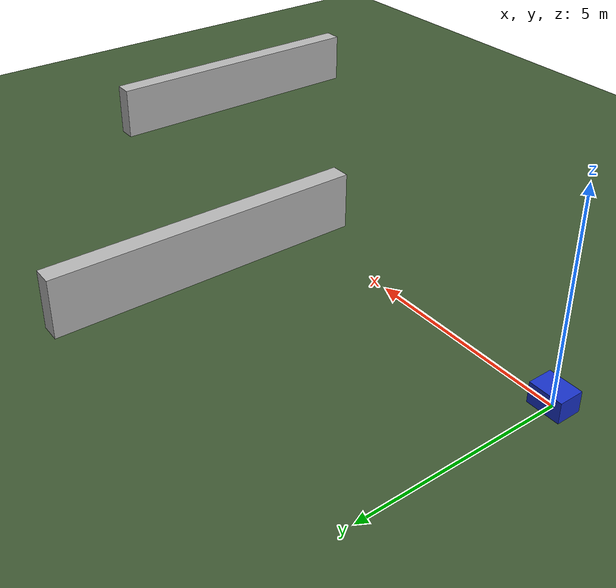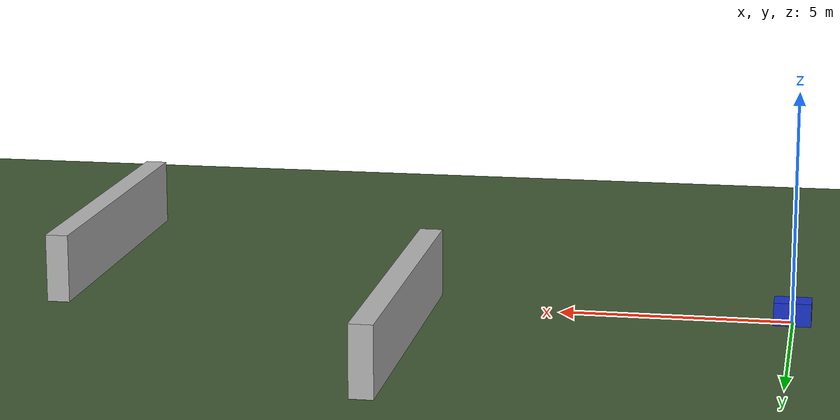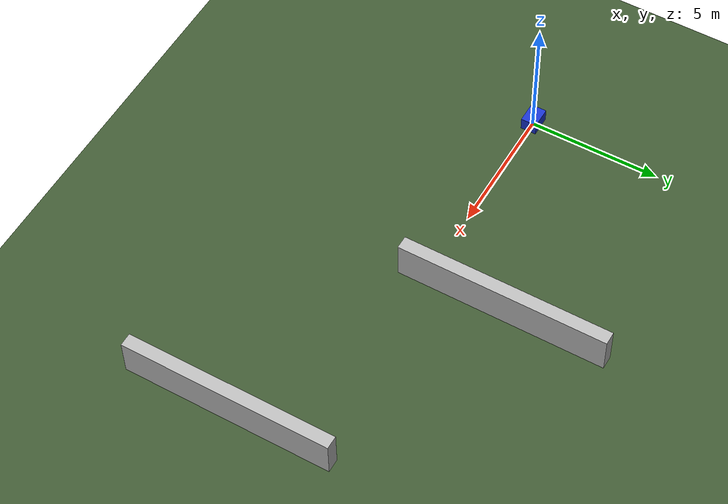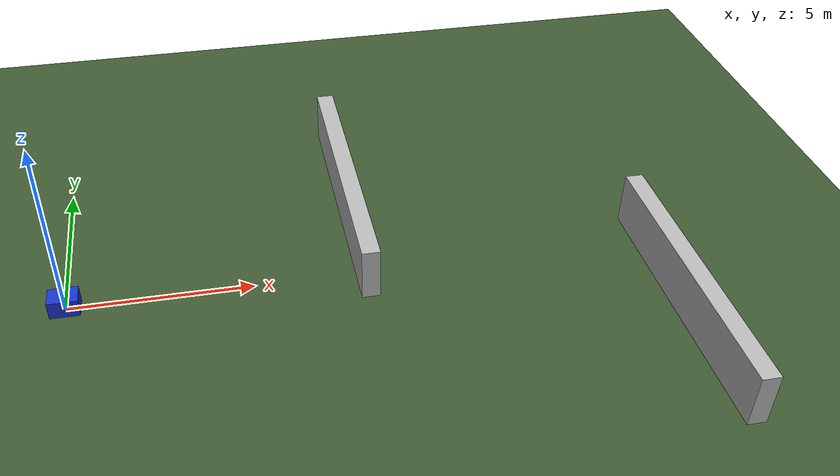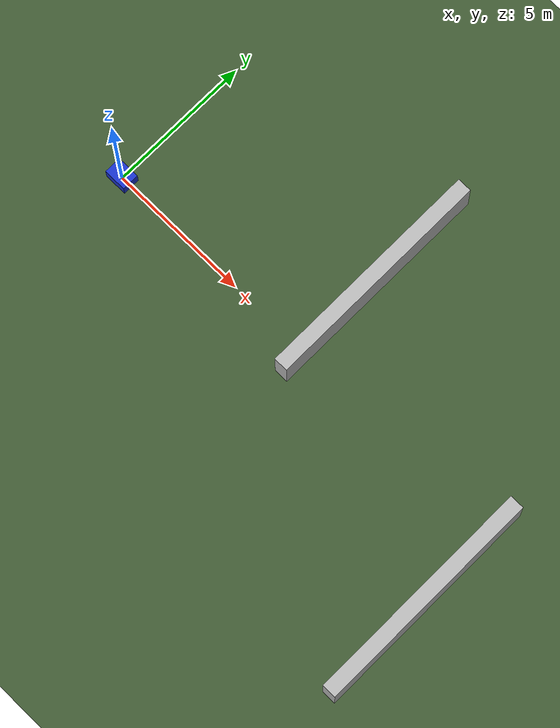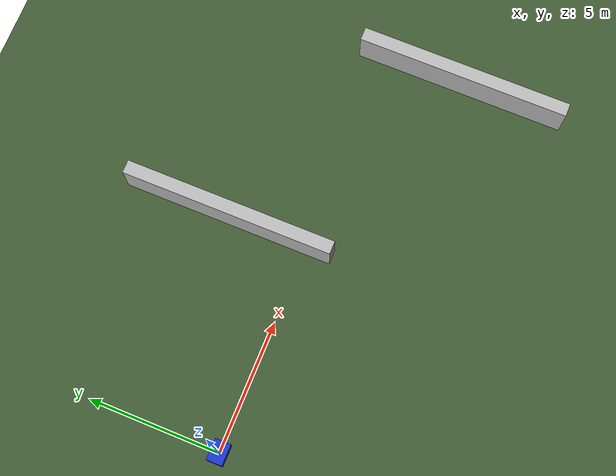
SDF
<?xml version="1.0"?>
<sdf version="1.9">
  <world name="outdoor_test">
    <gravity>0 0 -9.81</gravity>
    <scene>
      <ambient>0.7 0.7 0.7 1</ambient>
      <background>0.5 0.7 0.9 1</background>
    </scene>
    <spherical_coordinates>
      <surface_model>EARTH_WGS84</surface_model>
      <world_frame_orientation>ENU</world_frame_orientation>
      <latitude_deg>50.77535</latitude_deg>
      <longitude_deg>6.08389</longitude_deg>
      <elevation>0</elevation>
    </spherical_coordinates>
    <physics name="1ms" type="ode">
      <max_step_size>0.001</max_step_size>
      <real_time_factor>1</real_time_factor>
      <real_time_update_rate>1000</real_time_update_rate>
    </physics>
    <plugin filename="gz-sim-physics-system" name="gz::sim::systems::Physics"/>
    <plugin filename="gz-sim-user-commands-system" name="gz::sim::systems::UserCommands"/>
    <plugin filename="gz-sim-scene-broadcaster-system" name="gz::sim::systems::SceneBroadcaster"/>
    <!-- Required for IMU, NavSat and GPU lidar sensors in Gazebo Harmonic. -->
    <plugin filename="gz-sim-sensors-system" name="gz::sim::systems::Sensors">
      <render_engine>ogre2</render_engine>
    </plugin>
    <plugin filename="gz-sim-imu-system" name="gz::sim::systems::Imu"/>
    <plugin filename="gz-sim-navsat-system" name="gz::sim::systems::NavSat"/>
    <light type="directional" name="sun">
      <cast_shadows>true</cast_shadows><pose>0 0 20 0 0 0</pose>
      <diffuse>0.9 0.9 0.9 1</diffuse><direction>-0.4 0.2 -1</direction>
    </light>
    <model name="ground">
      <static>true</static><link name="link">
        <collision name="collision"><geometry><plane><normal>0 0 1</normal><size>300 300</size></plane></geometry></collision>
        <visual name="visual"><geometry><plane><normal>0 0 1</normal><size>300 300</size></plane></geometry><material><ambient>0.25 0.35 0.20 1</ambient></material></visual>
      </link>
    </model>
    <model name="wall_a">
      <static>true</static><pose>8 3 0.75 0 0 0</pose><link name="link">
        <collision name="c"><geometry><box><size>0.5 8 1.5</size></box></geometry></collision>
        <visual name="v"><geometry><box><size>0.5 8 1.5</size></box></geometry></visual>
      </link>
    </model>
    <model name="wall_b">
      <static>true</static><pose>16 -3 0.75 0 0 0</pose><link name="link">
        <collision name="c"><geometry><box><size>0.5 8 1.5</size></box></geometry></collision>
        <visual name="v"><geometry><box><size>0.5 8 1.5</size></box></geometry></visual>
      </link>
    </model>
    <model name="sim_robot">
      <pose>0 0 0.25 0 0 0</pose>
      <link name="base_link">
        <inertial><mass>35</mass><inertia><ixx>2</ixx><iyy>2</iyy><izz>2</izz><ixy>0</ixy><ixz>0</ixz><iyz>0</iyz></inertia></inertial>
        <collision name="body_collision"><geometry><box><size>0.8 0.6 0.5</size></box></geometry></collision>
        <visual name="body_visual"><geometry><box><size>0.8 0.6 0.5</size></box></geometry><material><ambient>0.1 0.2 0.8 1</ambient></material></visual>
        <sensor name="imu" type="imu">
          <always_on>true</always_on>
          <update_rate>25</update_rate>
          <topic>/sim/imu</topic>
          <imu/>
        </sensor>
        <sensor name="gps" type="navsat">
          <always_on>true</always_on>
          <update_rate>10</update_rate>
          <topic>/sim/gps</topic>
          <navsat/>
        </sensor>
        <sensor name="lidar" type="gpu_lidar"><pose>0 0 0.35 0 0 0</pose><update_rate>10</update_rate><topic>/sim/scan</topic><ray><scan><horizontal><samples>360</samples><resolution>1</resolution><min_angle>-3.14159</min_angle><max_angle>3.14159</max_angle></horizontal></scan><range><min>0.12</min><max>40</max><resolution>0.01</resolution></range></ray></sensor>
      </link>
      <link name="left_wheel"><pose>0 0.34 0 1.5708 0 0</pose><inertial><mass>2</mass><inertia><ixx>0.02</ixx><iyy>0.02</iyy><izz>0.02</izz><ixy>0</ixy><ixz>0</ixz><iyz>0</iyz></inertia></inertial><collision name="c"><geometry><cylinder><radius>0.15</radius><length>0.12</length></cylinder></geometry></collision></link>
      <link name="right_wheel"><pose>0 -0.34 0 1.5708 0 0</pose><inertial><mass>2</mass><inertia><ixx>0.02</ixx><iyy>0.02</iyy><izz>0.02</izz><ixy>0</ixy><ixz>0</ixz><iyz>0</iyz></inertia></inertial><collision name="c"><geometry><cylinder><radius>0.15</radius><length>0.12</length></cylinder></geometry></collision></link>
      <joint name="left_wheel_joint" type="revolute"><parent>base_link</parent><child>left_wheel</child><axis><xyz>0 1 0</xyz></axis></joint>
      <joint name="right_wheel_joint" type="revolute"><parent>base_link</parent><child>right_wheel</child><axis><xyz>0 1 0</xyz></axis></joint>
      <plugin filename="gz-sim-diff-drive-system" name="gz::sim::systems::DiffDrive">
        <left_joint>left_wheel_joint</left_joint><right_joint>right_wheel_joint</right_joint>
        <wheel_separation>0.68</wheel_separation><wheel_radius>0.15</wheel_radius>
        <topic>/model/sim_robot/cmd_vel</topic><odom_topic>/model/sim_robot/odometry</odom_topic>
        <frame_id>odom</frame_id><child_frame_id>base_link</child_frame_id><odom_publish_frequency>20</odom_publish_frequency>
      </plugin>
    </model>
  </world>
</sdf>
